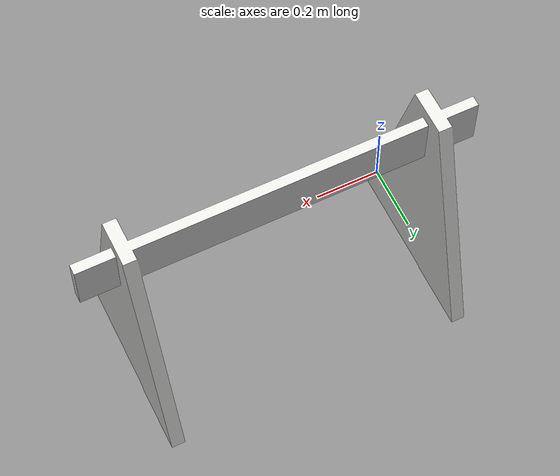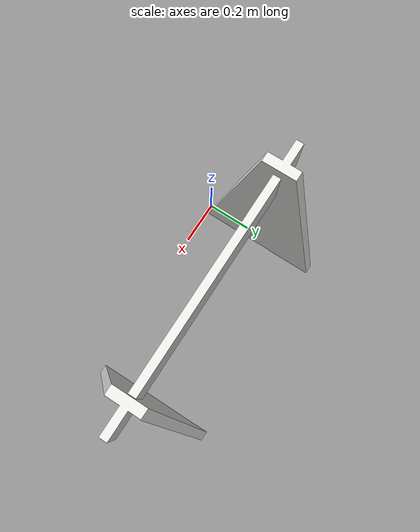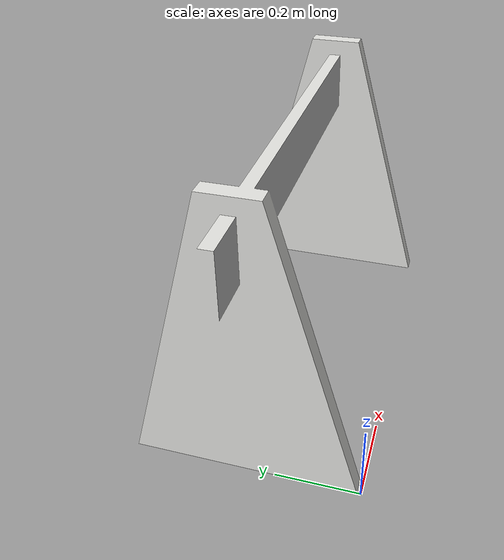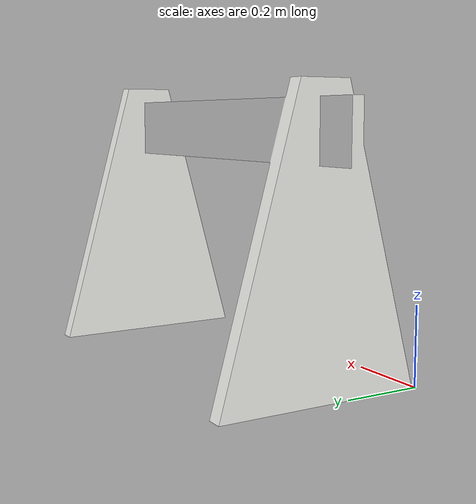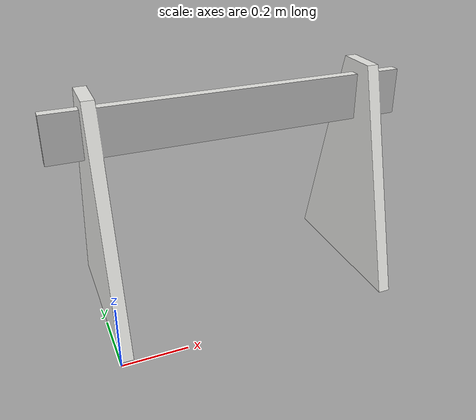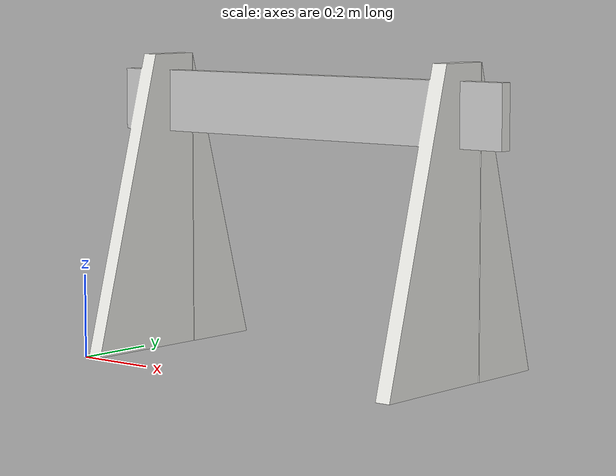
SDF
<?xml version='1.0'?>
<sdf version='1.4'>
    <model name="construction_fence">
        <static>true</static>
	    <link name="link">
		<collision name="collision">
		  <geometry>
			<mesh>
			    <uri>model://construction_fence/meshes/construction_fence.dae</uri>
			</mesh>
		    </geometry>
		</collision>
		<visual name='visual'>
		    <geometry>
			<mesh>
			    <uri>model://construction_fence/meshes/construction_fence.dae</uri>
			</mesh>
		    </geometry>
		</visual>
	    </link>
    </model>
</sdf>
